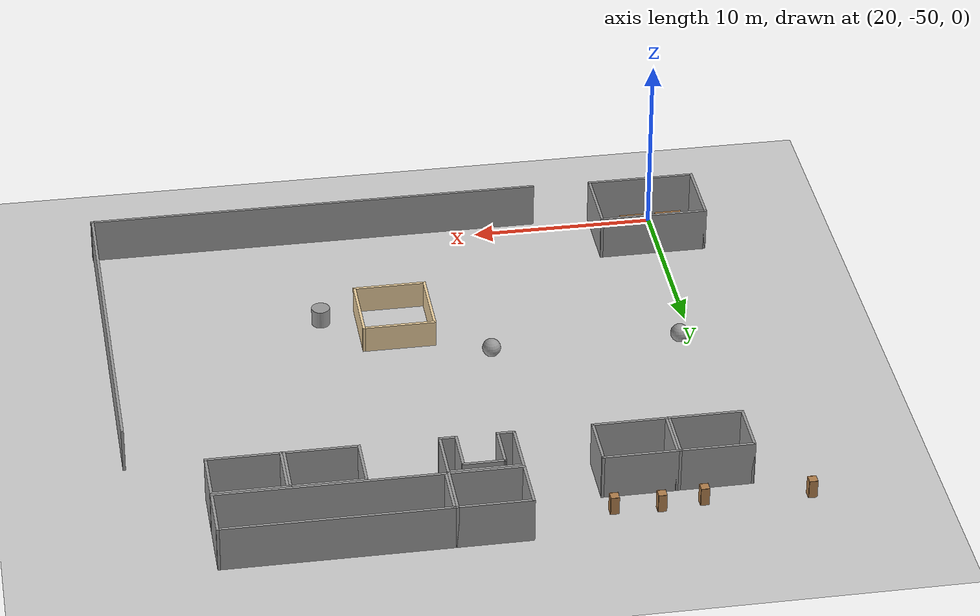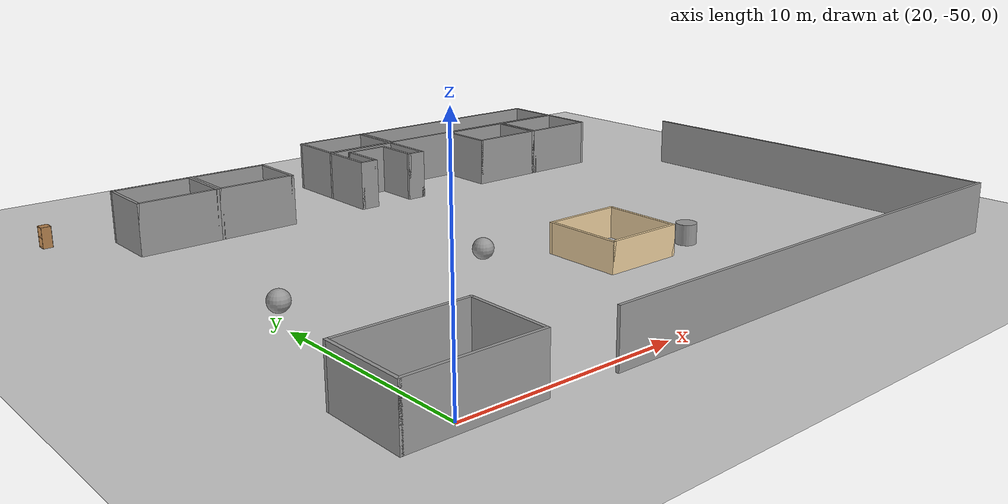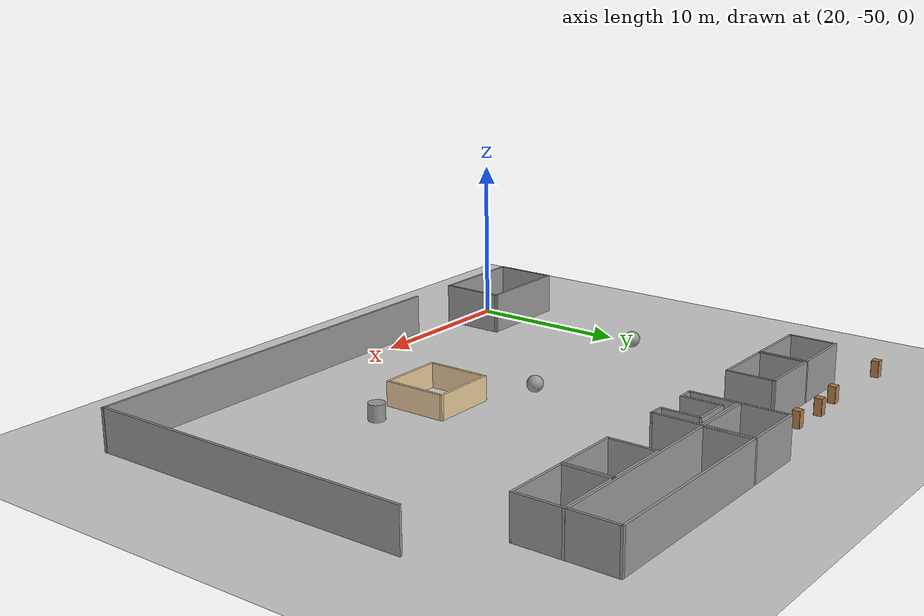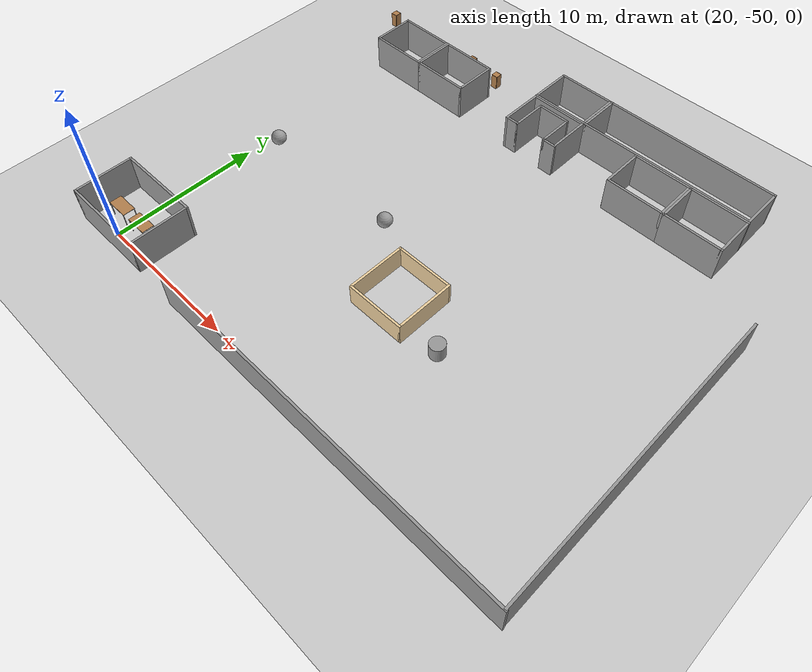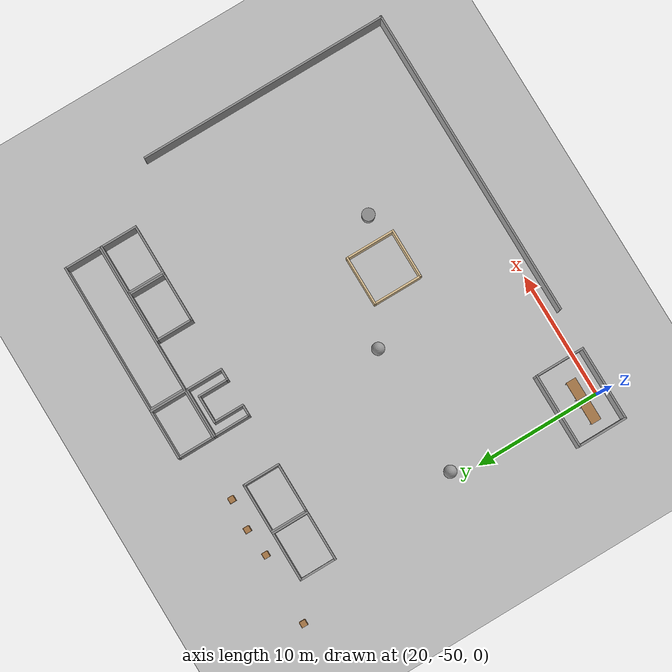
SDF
<sdf version="1.6">
 <world name="default">
  <model name="ground_plane">
   <static>1</static>
   <link name="link">
    <collision name="collision">
     <geometry><plane><normal>0 0 1</normal><size>105 105</size></plane></geometry>
     <surface>
      <contact><collide_bitmask>65535</collide_bitmask></contact>
      <friction><ode><mu>100</mu><mu2>50</mu2></ode></friction>
     </surface>
    </collision>
    <visual name="visual">
     <cast_shadows>0</cast_shadows>
     <geometry><plane><normal>0 0 1</normal><size>105 105</size></plane></geometry>
     <material>
      <script><uri>file://media/materials/scripts/gazebo.material</uri><name>Gazebo/Grey</name></script>
     </material>
    </visual>
   </link>
  </model>
  <model name="base3x4_25">
   <pose>33.5003 -23.2296 0 0 -0 0</pose>
   <link name="Wall_18">
    <collision name="Wall_18_Collision">
     <geometry><box><size>3 0.15 2.5</size></box></geometry>
     <pose>0 0 1.25 0 -0 0</pose>
    </collision>
    <visual name="Wall_18_Visual">
     <pose>0 0 1.25 0 -0 0</pose>
     <geometry><box><size>3 0.15 2.5</size></box></geometry>
     <material>
      <script><uri>file://media/materials/scripts/gazebo.material</uri><name>Gazebo/Grey</name></script>
      <ambient>1 1 1 1</ambient>
     </material>
     <meta><layer>0</layer></meta>
    </visual>
    <pose>-1.925 -0 0 0 -0 -1.5708</pose>
   </link>
   <link name="Wall_19">
    <collision name="Wall_19_Collision">
     <geometry><box><size>4 0.15 2.5</size></box></geometry>
     <pose>0 0 1.25 0 -0 0</pose>
    </collision>
    <visual name="Wall_19_Visual">
     <pose>0 0 1.25 0 -0 0</pose>
     <geometry><box><size>4 0.15 2.5</size></box></geometry>
     <material>
      <script><uri>file://media/materials/scripts/gazebo.material</uri><name>Gazebo/Grey</name></script>
      <ambient>1 1 1 1</ambient>
     </material>
     <meta><layer>0</layer></meta>
    </visual>
    <pose>-0 -1.425 0 0 -0 0</pose>
   </link>
   <link name="Wall_20">
    <collision name="Wall_20_Collision">
     <geometry><box><size>3 0.15 2.5</size></box></geometry>
     <pose>0 0 1.25 0 -0 0</pose>
    </collision>
    <visual name="Wall_20_Visual">
     <pose>0 0 1.25 0 -0 0</pose>
     <geometry><box><size>3 0.15 2.5</size></box></geometry>
     <material>
      <script><uri>file://media/materials/scripts/gazebo.material</uri><name>Gazebo/Grey</name></script>
      <ambient>1 1 1 1</ambient>
     </material>
     <meta><layer>0</layer></meta>
    </visual>
    <pose>1.925 -0 0 0 -0 1.5708</pose>
   </link>
   <link name="Wall_21">
    <collision name="Wall_21_Collision">
     <geometry><box><size>4 0.15 2.5</size></box></geometry>
     <pose>0 0 1.25 0 -0 0</pose>
    </collision>
    <visual name="Wall_21_Visual">
     <pose>0 0 1.25 0 -0 0</pose>
     <geometry><box><size>4 0.15 2.5</size></box></geometry>
     <material>
      <script><uri>file://media/materials/scripts/gazebo.material</uri><name>Gazebo/Grey</name></script>
      <ambient>1 1 1 1</ambient>
     </material>
     <meta><layer>0</layer></meta>
    </visual>
    <pose>-0 1.425 0 0 -0 3.14159</pose>
   </link>
   <static>1</static>
  </model>
  <model name="base3x12">
   <pose>41.5026 -23.2294 0 0 -0 0</pose>
   <link name="Wall_0">
    <collision name="Wall_0_Collision">
     <geometry><box><size>3 0.15 2.5</size></box></geometry>
     <pose>0 0 1.25 0 -0 0</pose>
    </collision>
    <visual name="Wall_0_Visual">
     <pose>0 0 1.25 0 -0 0</pose>
     <geometry><box><size>3 0.15 2.5</size></box></geometry>
     <material>
      <script><uri>file://media/materials/scripts/gazebo.material</uri><name>Gazebo/Grey</name></script>
      <ambient>1 1 1 1</ambient>
     </material>
     <meta><layer>0</layer></meta>
    </visual>
    <pose>-5.925 0 0 0 -0 -1.5708</pose>
   </link>
   <link name="Wall_1">
    <collision name="Wall_1_Collision">
     <geometry><box><size>12 0.15 2.5</size></box></geometry>
     <pose>0 0 1.25 0 -0 0</pose>
    </collision>
    <visual name="Wall_1_Visual">
     <pose>0 0 1.25 0 -0 0</pose>
     <geometry><box><size>12 0.15 2.5</size></box></geometry>
     <material>
      <script><uri>file://media/materials/scripts/gazebo.material</uri><name>Gazebo/Grey</name></script>
      <ambient>1 1 1 1</ambient>
     </material>
     <meta><layer>0</layer></meta>
    </visual>
    <pose>0 -1.425 0 0 -0 0</pose>
   </link>
   <link name="Wall_2">
    <collision name="Wall_2_Collision">
     <geometry><box><size>3 0.15 2.5</size></box></geometry>
     <pose>0 0 1.25 0 -0 0</pose>
    </collision>
    <visual name="Wall_2_Visual">
     <pose>0 0 1.25 0 -0 0</pose>
     <geometry><box><size>3 0.15 2.5</size></box></geometry>
     <material>
      <script><uri>file://media/materials/scripts/gazebo.material</uri><name>Gazebo/Grey</name></script>
      <ambient>1 1 1 1</ambient>
     </material>
     <meta><layer>0</layer></meta>
    </visual>
    <pose>5.925 0 0 0 -0 1.5708</pose>
   </link>
   <link name="Wall_3">
    <collision name="Wall_3_Collision">
     <geometry><box><size>12 0.15 2.5</size></box></geometry>
     <pose>0 0 1.25 0 -0 0</pose>
    </collision>
    <visual name="Wall_3_Visual">
     <pose>0 0 1.25 0 -0 0</pose>
     <geometry><box><size>12 0.15 2.5</size></box></geometry>
     <material>
      <script><uri>file://media/materials/scripts/gazebo.material</uri><name>Gazebo/Grey</name></script>
      <ambient>1 1 1 1</ambient>
     </material>
     <meta><layer>0</layer></meta>
    </visual>
    <pose>0 1.425 0 0 -0 3.14159</pose>
   </link>
   <static>1</static>
  </model>
  <model name="base4x6_0">
   <pose>20.4097 -48.6671 0 0 -0 0</pose>
   <link name="Wall_23">
    <collision name="Wall_23_Collision">
     <geometry><box><size>4 0.15 2.5</size></box></geometry>
     <pose>0 0 1.25 0 -0 0</pose>
    </collision>
    <visual name="Wall_23_Visual">
     <pose>0 0 1.25 0 -0 0</pose>
     <geometry><box><size>4 0.15 2.5</size></box></geometry>
     <material>
      <script><uri>file://media/materials/scripts/gazebo.material</uri><name>Gazebo/Grey</name></script>
      <ambient>1 1 1 1</ambient>
     </material>
     <meta><layer>0</layer></meta>
    </visual>
    <pose>-2.925 0 0 0 -0 -1.5708</pose>
   </link>
   <link name="Wall_24">
    <collision name="Wall_24_Collision">
     <geometry><box><size>6 0.15 2.5</size></box></geometry>
     <pose>0 0 1.25 0 -0 0</pose>
    </collision>
    <visual name="Wall_24_Visual">
     <pose>0 0 1.25 0 -0 0</pose>
     <geometry><box><size>6 0.15 2.5</size></box></geometry>
     <material>
      <script><uri>file://media/materials/scripts/gazebo.material</uri><name>Gazebo/Grey</name></script>
      <ambient>1 1 1 1</ambient>
     </material>
     <meta><layer>0</layer></meta>
    </visual>
    <pose>-0 -1.925 0 0 -0 0</pose>
   </link>
   <link name="Wall_25">
    <collision name="Wall_25_Collision">
     <geometry><box><size>4 0.15 2.5</size></box></geometry>
     <pose>0 0 1.25 0 -0 0</pose>
    </collision>
    <visual name="Wall_25_Visual">
     <pose>0 0 1.25 0 -0 0</pose>
     <geometry><box><size>4 0.15 2.5</size></box></geometry>
     <material>
      <script><uri>file://media/materials/scripts/gazebo.material</uri><name>Gazebo/Grey</name></script>
      <ambient>1 1 1 1</ambient>
     </material>
     <meta><layer>0</layer></meta>
    </visual>
    <pose>2.925 0 0 0 -0 1.5708</pose>
   </link>
   <link name="Wall_26">
    <collision name="Wall_26_Collision">
     <geometry><box><size>6 0.15 2.5</size></box></geometry>
     <pose>0 0 1.25 0 -0 0</pose>
    </collision>
    <visual name="Wall_26_Visual">
     <pose>0 0 1.25 0 -0 0</pose>
     <geometry><box><size>6 0.15 2.5</size></box></geometry>
     <material>
      <script><uri>file://media/materials/scripts/gazebo.material</uri><name>Gazebo/Grey</name></script>
      <ambient>1 1 1 1</ambient>
     </material>
     <meta><layer>0</layer></meta>
    </visual>
    <pose>-0 1.925 0 0 -0 3.14159</pose>
   </link>
   <static>1</static>
  </model>
  <model name="wall_v20m_8">
   <pose>51.4045 -40.7218 0 0 -0 0</pose>
   <link name="Wall_35">
    <collision name="Wall_35_Collision">
     <geometry><box><size>20 0.15 2.5</size></box></geometry>
     <pose>0 0 1.25 0 -0 0</pose>
    </collision>
    <visual name="Wall_35_Visual">
     <pose>0 0 1.25 0 -0 0</pose>
     <geometry><box><size>20 0.15 2.5</size></box></geometry>
     <material>
      <script><uri>file://media/materials/scripts/gazebo.material</uri><name>Gazebo/Grey</name></script>
      <ambient>1 1 1 1</ambient>
     </material>
     <meta><layer>0</layer></meta>
    </visual>
    <pose>0 -0 0 0 -0 -1.5708</pose>
   </link>
   <static>1</static>
  </model>
  <model name="wall_25m_9">
   <pose>39.0197 -50.7168 0 0 -0 0</pose>
   <link name="Wall_28">
    <collision name="Wall_28_Collision">
     <geometry><box><size>25 0.15 2.5</size></box></geometry>
     <pose>0 0 1.25 0 -0 0</pose>
    </collision>
    <visual name="Wall_28_Visual">
     <pose>0 0 1.25 0 -0 0</pose>
     <geometry><box><size>25 0.15 2.5</size></box></geometry>
     <material>
      <script><uri>file://media/materials/scripts/gazebo.material</uri><name>Gazebo/Grey</name></script>
      <ambient>1 1 1 1</ambient>
     </material>
     <meta><layer>0</layer></meta>
    </visual>
   </link>
   <static>1</static>
  </model>
  <model name="table_12">
   <static>1</static>
   <link name="link">
    <collision name="surface">
     <pose>0 0 1 0 -0 0</pose>
     <geometry><box><size>1.5 0.8 0.03</size></box></geometry>
     <surface><friction><ode><mu>0.6</mu><mu2>0.6</mu2></ode></friction></surface>
    </collision>
    <visual name="visual1">
     <pose>0 0 1 0 -0 0</pose>
     <geometry><box><size>1.5 0.8 0.03</size></box></geometry>
     <material>
      <script><uri>file://media/materials/scripts/gazebo.material</uri><name>Gazebo/Wood</name></script>
     </material>
    </visual>
    <collision name="front_left_leg">
     <pose>0.68 0.38 0.5 0 -0 0</pose>
     <geometry><cylinder><radius>0.02</radius><length>1</length></cylinder></geometry>
    </collision>
    <visual name="front_left_leg">
     <pose>0.68 0.38 0.5 0 -0 0</pose>
     <geometry><cylinder><radius>0.02</radius><length>1</length></cylinder></geometry>
     <material>
      <script><uri>file://media/materials/scripts/gazebo.material</uri><name>Gazebo/Grey</name></script>
     </material>
    </visual>
    <collision name="front_right_leg">
     <pose>0.68 -0.38 0.5 0 -0 0</pose>
     <geometry><cylinder><radius>0.02</radius><length>1</length></cylinder></geometry>
    </collision>
    <visual name="front_right_leg">
     <pose>0.68 -0.38 0.5 0 -0 0</pose>
     <geometry><cylinder><radius>0.02</radius><length>1</length></cylinder></geometry>
     <material>
      <script><uri>file://media/materials/scripts/gazebo.material</uri><name>Gazebo/Grey</name></script>
     </material>
    </visual>
    <collision name="back_right_leg">
     <pose>-0.68 -0.38 0.5 0 -0 0</pose>
     <geometry><cylinder><radius>0.02</radius><length>1</length></cylinder></geometry>
    </collision>
    <visual name="back_right_leg">
     <pose>-0.68 -0.38 0.5 0 -0 0</pose>
     <geometry><cylinder><radius>0.02</radius><length>1</length></cylinder></geometry>
     <material>
      <script><uri>file://media/materials/scripts/gazebo.material</uri><name>Gazebo/Grey</name></script>
     </material>
    </visual>
    <collision name="back_left_leg">
     <pose>-0.68 0.38 0.5 0 -0 0</pose>
     <geometry><cylinder><radius>0.02</radius><length>1</length></cylinder></geometry>
    </collision>
    <visual name="back_left_leg">
     <pose>-0.68 0.38 0.5 0 -0 0</pose>
     <geometry><cylinder><radius>0.02</radius><length>1</length></cylinder></geometry>
     <material>
      <script><uri>file://media/materials/scripts/gazebo.material</uri><name>Gazebo/Grey</name></script>
     </material>
    </visual>
   </link>
   <pose>19.0783 -48.8312 0 0 -0 0</pose>
  </model>
  <model name="table_13">
   <static>1</static>
   <link name="link">
    <collision name="surface">
     <pose>0 0 1 0 -0 0</pose>
     <geometry><box><size>1.5 0.8 0.03</size></box></geometry>
     <surface><friction><ode><mu>0.6</mu><mu2>0.6</mu2></ode></friction></surface>
    </collision>
    <visual name="visual1">
     <pose>0 0 1 0 -0 0</pose>
     <geometry><box><size>1.5 0.8 0.03</size></box></geometry>
     <material>
      <script><uri>file://media/materials/scripts/gazebo.material</uri><name>Gazebo/Wood</name></script>
     </material>
    </visual>
    <collision name="front_left_leg">
     <pose>0.68 0.38 0.5 0 -0 0</pose>
     <geometry><cylinder><radius>0.02</radius><length>1</length></cylinder></geometry>
    </collision>
    <visual name="front_left_leg">
     <pose>0.68 0.38 0.5 0 -0 0</pose>
     <geometry><cylinder><radius>0.02</radius><length>1</length></cylinder></geometry>
     <material>
      <script><uri>file://media/materials/scripts/gazebo.material</uri><name>Gazebo/Grey</name></script>
     </material>
    </visual>
    <collision name="front_right_leg">
     <pose>0.68 -0.38 0.5 0 -0 0</pose>
     <geometry><cylinder><radius>0.02</radius><length>1</length></cylinder></geometry>
    </collision>
    <visual name="front_right_leg">
     <pose>0.68 -0.38 0.5 0 -0 0</pose>
     <geometry><cylinder><radius>0.02</radius><length>1</length></cylinder></geometry>
     <material>
      <script><uri>file://media/materials/scripts/gazebo.material</uri><name>Gazebo/Grey</name></script>
     </material>
    </visual>
    <collision name="back_right_leg">
     <pose>-0.68 -0.38 0.5 0 -0 0</pose>
     <geometry><cylinder><radius>0.02</radius><length>1</length></cylinder></geometry>
    </collision>
    <visual name="back_right_leg">
     <pose>-0.68 -0.38 0.5 0 -0 0</pose>
     <geometry><cylinder><radius>0.02</radius><length>1</length></cylinder></geometry>
     <material>
      <script><uri>file://media/materials/scripts/gazebo.material</uri><name>Gazebo/Grey</name></script>
     </material>
    </visual>
    <collision name="back_left_leg">
     <pose>-0.68 0.38 0.5 0 -0 0</pose>
     <geometry><cylinder><radius>0.02</radius><length>1</length></cylinder></geometry>
    </collision>
    <visual name="back_left_leg">
     <pose>-0.68 0.38 0.5 0 -0 0</pose>
     <geometry><cylinder><radius>0.02</radius><length>1</length></cylinder></geometry>
     <material>
      <script><uri>file://media/materials/scripts/gazebo.material</uri><name>Gazebo/Grey</name></script>
     </material>
    </visual>
   </link>
   <pose>21.0761 -48.8079 0 0 -0 0</pose>
  </model>
  <model name="cabinet_0">
   <static>1</static>
   <link name="cabinet_bottom_plate">
    <inertial>
     <pose>0 0 -1 0 -0 0</pose>
     <inertia><ixx>2.05</ixx><ixy>0</ixy><ixz>0</ixz><iyy>2.05</iyy><iyz>0</iyz><izz>2.05</izz></inertia>
     <mass>25</mass>
    </inertial>
    <collision name="cabinet_bottom_plate_geom">
     <pose>0 0 0.01 0 -0 0</pose>
     <geometry><box><size>0.45 0.45 0.02</size></box></geometry>
    </collision>
    <visual name="cabinet_bottom_plate_geom_visual">
     <pose>0 0 0.01 0 -0 0</pose>
     <geometry><box><size>0.45 0.45 0.02</size></box></geometry>
     <material>
      <script><uri>file://media/materials/scripts/gazebo.material</uri><name>Gazebo/Wood</name></script>
     </material>
    </visual>
    <collision name="cabinet_bottom_plate_geom_cabinet_back_plate">
     <pose>0.235 0 0.51 0 -0 0</pose>
     <geometry><box><size>0.02 0.45 1.02</size></box></geometry>
    </collision>
    <visual name="cabinet_bottom_plate_geom_cabinet_back_plate_visual">
     <pose>0.235 0 0.51 0 -0 0</pose>
     <geometry><box><size>0.02 0.45 1.02</size></box></geometry>
     <material>
      <script><uri>file://media/materials/scripts/gazebo.material</uri><name>Gazebo/Wood</name></script>
     </material>
    </visual>
    <collision name="cabinet_bottom_plate_geom_cabinet_left_plate">
     <pose>0 0.235 0.51 0 -0 0</pose>
     <geometry><box><size>0.45 0.02 1.02</size></box></geometry>
    </collision>
    <visual name="cabinet_bottom_plate_geom_cabinet_left_plate_visual">
     <pose>0 0.235 0.51 0 -0 0</pose>
     <geometry><box><size>0.45 0.02 1.02</size></box></geometry>
     <material>
      <script><uri>file://media/materials/scripts/gazebo.material</uri><name>Gazebo/Wood</name></script>
     </material>
    </visual>
    <collision name="cabinet_bottom_plate_geom_cabinet_middle_plate">
     <pose>0 0 0.51 0 -0 0</pose>
     <geometry><box><size>0.45 0.45 0.02</size></box></geometry>
    </collision>
    <visual name="cabinet_bottom_plate_geom_cabinet_middle_plate_visual">
     <pose>0 0 0.51 0 -0 0</pose>
     <geometry><box><size>0.45 0.45 0.02</size></box></geometry>
     <material>
      <script><uri>file://media/materials/scripts/gazebo.material</uri><name>Gazebo/Wood</name></script>
     </material>
    </visual>
    <collision name="cabinet_bottom_plate_geom_cabinet_right_plate">
     <pose>0 -0.235 0.51 0 -0 0</pose>
     <geometry><box><size>0.45 0.02 1.02</size></box></geometry>
    </collision>
    <visual name="cabinet_bottom_plate_geom_cabinet_right_plate_visual">
     <pose>0 -0.235 0.51 0 -0 0</pose>
     <geometry><box><size>0.45 0.02 1.02</size></box></geometry>
     <material>
      <script><uri>file://media/materials/scripts/gazebo.material</uri><name>Gazebo/Wood</name></script>
     </material>
    </visual>
    <collision name="cabinet_bottom_plate_geom_cabinet_top_plate">
     <pose>0 0 1.01 0 -0 0</pose>
     <geometry><box><size>0.45 0.45 0.02</size></box></geometry>
    </collision>
    <visual name="cabinet_bottom_plate_geom_cabinet_top_plate_visual">
     <pose>0 0 1.01 0 -0 0</pose>
     <geometry><box><size>0.45 0.45 0.02</size></box></geometry>
     <material>
      <script><uri>file://media/materials/scripts/gazebo.material</uri><name>Gazebo/Wood</name></script>
     </material>
    </visual>
   </link>
   <pose>16.8557 -23.3254 0 0 -0 0</pose>
  </model>
  <model name="cabinet_2">
   <static>1</static>
   <link name="cabinet_bottom_plate">
    <inertial>
     <pose>0 0 -1 0 -0 0</pose>
     <inertia><ixx>2.05</ixx><ixy>0</ixy><ixz>0</ixz><iyy>2.05</iyy><iyz>0</iyz><izz>2.05</izz></inertia>
     <mass>25</mass>
    </inertial>
    <collision name="cabinet_bottom_plate_geom">
     <pose>0 0 0.01 0 -0 0</pose>
     <geometry><box><size>0.45 0.45 0.02</size></box></geometry>
    </collision>
    <visual name="cabinet_bottom_plate_geom_visual">
     <pose>0 0 0.01 0 -0 0</pose>
     <geometry><box><size>0.45 0.45 0.02</size></box></geometry>
     <material>
      <script><uri>file://media/materials/scripts/gazebo.material</uri><name>Gazebo/Wood</name></script>
     </material>
    </visual>
    <collision name="cabinet_bottom_plate_geom_cabinet_back_plate">
     <pose>0.235 0 0.51 0 -0 0</pose>
     <geometry><box><size>0.02 0.45 1.02</size></box></geometry>
    </collision>
    <visual name="cabinet_bottom_plate_geom_cabinet_back_plate_visual">
     <pose>0.235 0 0.51 0 -0 0</pose>
     <geometry><box><size>0.02 0.45 1.02</size></box></geometry>
     <material>
      <script><uri>file://media/materials/scripts/gazebo.material</uri><name>Gazebo/Wood</name></script>
     </material>
    </visual>
    <collision name="cabinet_bottom_plate_geom_cabinet_left_plate">
     <pose>0 0.235 0.51 0 -0 0</pose>
     <geometry><box><size>0.45 0.02 1.02</size></box></geometry>
    </collision>
    <visual name="cabinet_bottom_plate_geom_cabinet_left_plate_visual">
     <pose>0 0.235 0.51 0 -0 0</pose>
     <geometry><box><size>0.45 0.02 1.02</size></box></geometry>
     <material>
      <script><uri>file://media/materials/scripts/gazebo.material</uri><name>Gazebo/Wood</name></script>
     </material>
    </visual>
    <collision name="cabinet_bottom_plate_geom_cabinet_middle_plate">
     <pose>0 0 0.51 0 -0 0</pose>
     <geometry><box><size>0.45 0.45 0.02</size></box></geometry>
    </collision>
    <visual name="cabinet_bottom_plate_geom_cabinet_middle_plate_visual">
     <pose>0 0 0.51 0 -0 0</pose>
     <geometry><box><size>0.45 0.45 0.02</size></box></geometry>
     <material>
      <script><uri>file://media/materials/scripts/gazebo.material</uri><name>Gazebo/Wood</name></script>
     </material>
    </visual>
    <collision name="cabinet_bottom_plate_geom_cabinet_right_plate">
     <pose>0 -0.235 0.51 0 -0 0</pose>
     <geometry><box><size>0.45 0.02 1.02</size></box></geometry>
    </collision>
    <visual name="cabinet_bottom_plate_geom_cabinet_right_plate_visual">
     <pose>0 -0.235 0.51 0 -0 0</pose>
     <geometry><box><size>0.45 0.02 1.02</size></box></geometry>
     <material>
      <script><uri>file://media/materials/scripts/gazebo.material</uri><name>Gazebo/Wood</name></script>
     </material>
    </visual>
    <collision name="cabinet_bottom_plate_geom_cabinet_top_plate">
     <pose>0 0 1.01 0 -0 0</pose>
     <geometry><box><size>0.45 0.45 0.02</size></box></geometry>
    </collision>
    <visual name="cabinet_bottom_plate_geom_cabinet_top_plate_visual">
     <pose>0 0 1.01 0 -0 0</pose>
     <geometry><box><size>0.45 0.45 0.02</size></box></geometry>
     <material>
      <script><uri>file://media/materials/scripts/gazebo.material</uri><name>Gazebo/Wood</name></script>
     </material>
    </visual>
   </link>
   <pose>22.437 -23.5316 0 0 -0 0</pose>
  </model>
  <model name="cabinet_3">
   <static>1</static>
   <link name="cabinet_bottom_plate">
    <inertial>
     <pose>0 0 -1 0 -0 0</pose>
     <inertia><ixx>2.05</ixx><ixy>0</ixy><ixz>0</ixz><iyy>2.05</iyy><iyz>0</iyz><izz>2.05</izz></inertia>
     <mass>25</mass>
    </inertial>
    <collision name="cabinet_bottom_plate_geom">
     <pose>0 0 0.01 0 -0 0</pose>
     <geometry><box><size>0.45 0.45 0.02</size></box></geometry>
    </collision>
    <visual name="cabinet_bottom_plate_geom_visual">
     <pose>0 0 0.01 0 -0 0</pose>
     <geometry><box><size>0.45 0.45 0.02</size></box></geometry>
     <material>
      <script><uri>file://media/materials/scripts/gazebo.material</uri><name>Gazebo/Wood</name></script>
     </material>
    </visual>
    <collision name="cabinet_bottom_plate_geom_cabinet_back_plate">
     <pose>0.235 0 0.51 0 -0 0</pose>
     <geometry><box><size>0.02 0.45 1.02</size></box></geometry>
    </collision>
    <visual name="cabinet_bottom_plate_geom_cabinet_back_plate_visual">
     <pose>0.235 0 0.51 0 -0 0</pose>
     <geometry><box><size>0.02 0.45 1.02</size></box></geometry>
     <material>
      <script><uri>file://media/materials/scripts/gazebo.material</uri><name>Gazebo/Wood</name></script>
     </material>
    </visual>
    <collision name="cabinet_bottom_plate_geom_cabinet_left_plate">
     <pose>0 0.235 0.51 0 -0 0</pose>
     <geometry><box><size>0.45 0.02 1.02</size></box></geometry>
    </collision>
    <visual name="cabinet_bottom_plate_geom_cabinet_left_plate_visual">
     <pose>0 0.235 0.51 0 -0 0</pose>
     <geometry><box><size>0.45 0.02 1.02</size></box></geometry>
     <material>
      <script><uri>file://media/materials/scripts/gazebo.material</uri><name>Gazebo/Wood</name></script>
     </material>
    </visual>
    <collision name="cabinet_bottom_plate_geom_cabinet_middle_plate">
     <pose>0 0 0.51 0 -0 0</pose>
     <geometry><box><size>0.45 0.45 0.02</size></box></geometry>
    </collision>
    <visual name="cabinet_bottom_plate_geom_cabinet_middle_plate_visual">
     <pose>0 0 0.51 0 -0 0</pose>
     <geometry><box><size>0.45 0.45 0.02</size></box></geometry>
     <material>
      <script><uri>file://media/materials/scripts/gazebo.material</uri><name>Gazebo/Wood</name></script>
     </material>
    </visual>
    <collision name="cabinet_bottom_plate_geom_cabinet_right_plate">
     <pose>0 -0.235 0.51 0 -0 0</pose>
     <geometry><box><size>0.45 0.02 1.02</size></box></geometry>
    </collision>
    <visual name="cabinet_bottom_plate_geom_cabinet_right_plate_visual">
     <pose>0 -0.235 0.51 0 -0 0</pose>
     <geometry><box><size>0.45 0.02 1.02</size></box></geometry>
     <material>
      <script><uri>file://media/materials/scripts/gazebo.material</uri><name>Gazebo/Wood</name></script>
     </material>
    </visual>
    <collision name="cabinet_bottom_plate_geom_cabinet_top_plate">
     <pose>0 0 1.01 0 -0 0</pose>
     <geometry><box><size>0.45 0.45 0.02</size></box></geometry>
    </collision>
    <visual name="cabinet_bottom_plate_geom_cabinet_top_plate_visual">
     <pose>0 0 1.01 0 -0 0</pose>
     <geometry><box><size>0.45 0.45 0.02</size></box></geometry>
     <material>
      <script><uri>file://media/materials/scripts/gazebo.material</uri><name>Gazebo/Wood</name></script>
     </material>
    </visual>
   </link>
   <pose>24.6818 -23.3224 0 0 -0 0</pose>
  </model>
  <model name="cabinet_4">
   <static>1</static>
   <link name="cabinet_bottom_plate">
    <inertial>
     <pose>0 0 -1 0 -0 0</pose>
     <inertia><ixx>2.05</ixx><ixy>0</ixy><ixz>0</ixz><iyy>2.05</iyy><iyz>0</iyz><izz>2.05</izz></inertia>
     <mass>25</mass>
    </inertial>
    <collision name="cabinet_bottom_plate_geom">
     <pose>0 0 0.01 0 -0 0</pose>
     <geometry><box><size>0.45 0.45 0.02</size></box></geometry>
    </collision>
    <visual name="cabinet_bottom_plate_geom_visual">
     <pose>0 0 0.01 0 -0 0</pose>
     <geometry><box><size>0.45 0.45 0.02</size></box></geometry>
     <material>
      <script><uri>file://media/materials/scripts/gazebo.material</uri><name>Gazebo/Wood</name></script>
     </material>
    </visual>
    <collision name="cabinet_bottom_plate_geom_cabinet_back_plate">
     <pose>0.235 0 0.51 0 -0 0</pose>
     <geometry><box><size>0.02 0.45 1.02</size></box></geometry>
    </collision>
    <visual name="cabinet_bottom_plate_geom_cabinet_back_plate_visual">
     <pose>0.235 0 0.51 0 -0 0</pose>
     <geometry><box><size>0.02 0.45 1.02</size></box></geometry>
     <material>
      <script><uri>file://media/materials/scripts/gazebo.material</uri><name>Gazebo/Wood</name></script>
     </material>
    </visual>
    <collision name="cabinet_bottom_plate_geom_cabinet_left_plate">
     <pose>0 0.235 0.51 0 -0 0</pose>
     <geometry><box><size>0.45 0.02 1.02</size></box></geometry>
    </collision>
    <visual name="cabinet_bottom_plate_geom_cabinet_left_plate_visual">
     <pose>0 0.235 0.51 0 -0 0</pose>
     <geometry><box><size>0.45 0.02 1.02</size></box></geometry>
     <material>
      <script><uri>file://media/materials/scripts/gazebo.material</uri><name>Gazebo/Wood</name></script>
     </material>
    </visual>
    <collision name="cabinet_bottom_plate_geom_cabinet_middle_plate">
     <pose>0 0 0.51 0 -0 0</pose>
     <geometry><box><size>0.45 0.45 0.02</size></box></geometry>
    </collision>
    <visual name="cabinet_bottom_plate_geom_cabinet_middle_plate_visual">
     <pose>0 0 0.51 0 -0 0</pose>
     <geometry><box><size>0.45 0.45 0.02</size></box></geometry>
     <material>
      <script><uri>file://media/materials/scripts/gazebo.material</uri><name>Gazebo/Wood</name></script>
     </material>
    </visual>
    <collision name="cabinet_bottom_plate_geom_cabinet_right_plate">
     <pose>0 -0.235 0.51 0 -0 0</pose>
     <geometry><box><size>0.45 0.02 1.02</size></box></geometry>
    </collision>
    <visual name="cabinet_bottom_plate_geom_cabinet_right_plate_visual">
     <pose>0 -0.235 0.51 0 -0 0</pose>
     <geometry><box><size>0.45 0.02 1.02</size></box></geometry>
     <material>
      <script><uri>file://media/materials/scripts/gazebo.material</uri><name>Gazebo/Wood</name></script>
     </material>
    </visual>
    <collision name="cabinet_bottom_plate_geom_cabinet_top_plate">
     <pose>0 0 1.01 0 -0 0</pose>
     <geometry><box><size>0.45 0.45 0.02</size></box></geometry>
    </collision>
    <visual name="cabinet_bottom_plate_geom_cabinet_top_plate_visual">
     <pose>0 0 1.01 0 -0 0</pose>
     <geometry><box><size>0.45 0.45 0.02</size></box></geometry>
     <material>
      <script><uri>file://media/materials/scripts/gazebo.material</uri><name>Gazebo/Wood</name></script>
     </material>
    </visual>
   </link>
   <pose>27.1129 -23.4747 0 0 -0 0</pose>
  </model>
  <model name="unit_sphere">
   <pose>20.702 -37.9798 0.5 0 -0 0</pose>
   <link name="link">
    <inertial>
     <mass>1</mass>
     <inertia><ixx>0.1</ixx><ixy>0</ixy><ixz>0</ixz><iyy>0.1</iyy><iyz>0</iyz><izz>0.1</izz></inertia>
    </inertial>
    <collision name="collision"><geometry><sphere><radius>0.5</radius></sphere></geometry></collision>
    <visual name="visual">
     <geometry><sphere><radius>0.5</radius></sphere></geometry>
     <material>
      <script><name>Gazebo/Grey</name><uri>file://media/materials/scripts/gazebo.material</uri></script>
     </material>
    </visual>
   </link>
  </model>
  <model name="unit_sphere_0">
   <pose>30.9933 -38.1291 0.5 0 -0 0</pose>
   <link name="link">
    <inertial>
     <mass>1</mass>
     <inertia><ixx>0.1</ixx><ixy>0</ixy><ixz>0</ixz><iyy>0.1</iyy><iyz>0</iyz><izz>0.1</izz></inertia>
    </inertial>
    <collision name="collision"><geometry><sphere><radius>0.5</radius></sphere></geometry></collision>
    <visual name="visual">
     <geometry><sphere><radius>0.5</radius></sphere></geometry>
     <material>
      <script><name>Gazebo/Grey</name><uri>file://media/materials/scripts/gazebo.material</uri></script>
     </material>
    </visual>
   </link>
  </model>
  <model name="unit_cylinder">
   <pose>39.6954 -42.5641 0.499981 0 -0 0</pose>
   <link name="link">
    <inertial>
     <mass>1</mass>
     <inertia><ixx>0.145833</ixx><ixy>0</ixy><ixz>0</ixz><iyy>0.145833</iyy><iyz>0</iyz><izz>0.125</izz></inertia>
    </inertial>
    <collision name="collision">
     <geometry><cylinder><radius>0.5</radius><length>1</length></cylinder></geometry>
    </collision>
    <visual name="visual">
     <geometry><cylinder><radius>0.5</radius><length>1</length></cylinder></geometry>
     <material>
      <script><name>Gazebo/Grey</name><uri>file://media/materials/scripts/gazebo.material</uri></script>
     </material>
    </visual>
   </link>
  </model>
  <model name="box4x4x1.5_3">
   <pose>35.7872 -41.5085 0 0 -0 0</pose>
   <link name="Wall_5">
    <collision name="Wall_5_Collision">
     <geometry><box><size>4 0.15 1.5</size></box></geometry>
     <pose>0 0 0.75 0 -0 0</pose>
    </collision>
    <visual name="Wall_5_Visual">
     <pose>0 0 0.75 0 -0 0</pose>
     <geometry><box><size>4 0.15 1.5</size></box></geometry>
     <material>
      <script><uri>file://media/materials/scripts/gazebo.material</uri><name>Gazebo/Grey</name></script>
      <ambient>0.921569 0.807843 0.615686 1</ambient>
     </material>
     <meta><layer>0</layer></meta>
    </visual>
    <pose>-1.925 -0 0 0 -0 -1.5708</pose>
   </link>
   <link name="Wall_6">
    <collision name="Wall_6_Collision">
     <geometry><box><size>4 0.15 1.5</size></box></geometry>
     <pose>0 0 0.75 0 -0 0</pose>
    </collision>
    <visual name="Wall_6_Visual">
     <pose>0 0 0.75 0 -0 0</pose>
     <geometry><box><size>4 0.15 1.5</size></box></geometry>
     <material>
      <script><uri>file://media/materials/scripts/gazebo.material</uri><name>Gazebo/Grey</name></script>
      <ambient>0.921569 0.807843 0.615686 1</ambient>
     </material>
     <meta><layer>0</layer></meta>
    </visual>
    <pose>0 -1.925 0 0 -0 0</pose>
   </link>
   <link name="Wall_7">
    <collision name="Wall_7_Collision">
     <geometry><box><size>4 0.15 1.5</size></box></geometry>
     <pose>0 0 0.75 0 -0 0</pose>
    </collision>
    <visual name="Wall_7_Visual">
     <pose>0 0 0.75 0 -0 0</pose>
     <geometry><box><size>4 0.15 1.5</size></box></geometry>
     <material>
      <script><uri>file://media/materials/scripts/gazebo.material</uri><name>Gazebo/Grey</name></script>
      <ambient>0.921569 0.807843 0.615686 1</ambient>
     </material>
     <meta><layer>0</layer></meta>
    </visual>
    <pose>1.925 -0 0 0 -0 1.5708</pose>
   </link>
   <link name="Wall_8">
    <collision name="Wall_8_Collision">
     <geometry><box><size>4 0.15 1.5</size></box></geometry>
     <pose>0 0 0.75 0 -0 0</pose>
    </collision>
    <visual name="Wall_8_Visual">
     <pose>0 0 0.75 0 -0 0</pose>
     <geometry><box><size>4 0.15 1.5</size></box></geometry>
     <material>
      <script><uri>file://media/materials/scripts/gazebo.material</uri><name>Gazebo/Grey</name></script>
      <ambient>0.921569 0.807843 0.615686 1</ambient>
     </material>
     <meta><layer>0</layer></meta>
    </visual>
    <pose>0 1.925 0 0 -0 3.14159</pose>
   </link>
   <static>1</static>
  </model>
  <model name="base3x4_9">
   <pose>45.5083 -26.2198 0 0 -0 0</pose>
   <link name="Wall_18">
    <collision name="Wall_18_Collision">
     <geometry><box><size>3 0.15 2.5</size></box></geometry>
     <pose>0 0 1.25 0 -0 0</pose>
    </collision>
    <visual name="Wall_18_Visual">
     <pose>0 0 1.25 0 -0 0</pose>
     <geometry><box><size>3 0.15 2.5</size></box></geometry>
     <material>
      <script><uri>file://media/materials/scripts/gazebo.material</uri><name>Gazebo/Grey</name></script>
      <ambient>1 1 1 1</ambient>
     </material>
     <meta><layer>0</layer></meta>
    </visual>
    <pose>-1.925 -0 0 0 -0 -1.5708</pose>
   </link>
   <link name="Wall_19">
    <collision name="Wall_19_Collision">
     <geometry><box><size>4 0.15 2.5</size></box></geometry>
     <pose>0 0 1.25 0 -0 0</pose>
    </collision>
    <visual name="Wall_19_Visual">
     <pose>0 0 1.25 0 -0 0</pose>
     <geometry><box><size>4 0.15 2.5</size></box></geometry>
     <material>
      <script><uri>file://media/materials/scripts/gazebo.material</uri><name>Gazebo/Grey</name></script>
      <ambient>1 1 1 1</ambient>
     </material>
     <meta><layer>0</layer></meta>
    </visual>
    <pose>-0 -1.425 0 0 -0 0</pose>
   </link>
   <link name="Wall_20">
    <collision name="Wall_20_Collision">
     <geometry><box><size>3 0.15 2.5</size></box></geometry>
     <pose>0 0 1.25 0 -0 0</pose>
    </collision>
    <visual name="Wall_20_Visual">
     <pose>0 0 1.25 0 -0 0</pose>
     <geometry><box><size>3 0.15 2.5</size></box></geometry>
     <material>
      <script><uri>file://media/materials/scripts/gazebo.material</uri><name>Gazebo/Grey</name></script>
      <ambient>1 1 1 1</ambient>
     </material>
     <meta><layer>0</layer></meta>
    </visual>
    <pose>1.925 -0 0 0 -0 1.5708</pose>
   </link>
   <link name="Wall_21">
    <collision name="Wall_21_Collision">
     <geometry><box><size>4 0.15 2.5</size></box></geometry>
     <pose>0 0 1.25 0 -0 0</pose>
    </collision>
    <visual name="Wall_21_Visual">
     <pose>0 0 1.25 0 -0 0</pose>
     <geometry><box><size>4 0.15 2.5</size></box></geometry>
     <material>
      <script><uri>file://media/materials/scripts/gazebo.material</uri><name>Gazebo/Grey</name></script>
      <ambient>1 1 1 1</ambient>
     </material>
     <meta><layer>0</layer></meta>
    </visual>
    <pose>-0 1.425 0 0 -0 3.14159</pose>
   </link>
   <static>1</static>
  </model>
  <model name="base3x4_12">
   <pose>41.5115 -26.2157 0 0 -0 0</pose>
   <link name="Wall_18">
    <collision name="Wall_18_Collision">
     <geometry><box><size>3 0.15 2.5</size></box></geometry>
     <pose>0 0 1.25 0 -0 0</pose>
    </collision>
    <visual name="Wall_18_Visual">
     <pose>0 0 1.25 0 -0 0</pose>
     <geometry><box><size>3 0.15 2.5</size></box></geometry>
     <material>
      <script><uri>file://media/materials/scripts/gazebo.material</uri><name>Gazebo/Grey</name></script>
      <ambient>1 1 1 1</ambient>
     </material>
     <meta><layer>0</layer></meta>
    </visual>
    <pose>-1.925 -0 0 0 -0 -1.5708</pose>
   </link>
   <link name="Wall_19">
    <collision name="Wall_19_Collision">
     <geometry><box><size>4 0.15 2.5</size></box></geometry>
     <pose>0 0 1.25 0 -0 0</pose>
    </collision>
    <visual name="Wall_19_Visual">
     <pose>0 0 1.25 0 -0 0</pose>
     <geometry><box><size>4 0.15 2.5</size></box></geometry>
     <material>
      <script><uri>file://media/materials/scripts/gazebo.material</uri><name>Gazebo/Grey</name></script>
      <ambient>1 1 1 1</ambient>
     </material>
     <meta><layer>0</layer></meta>
    </visual>
    <pose>-0 -1.425 0 0 -0 0</pose>
   </link>
   <link name="Wall_20">
    <collision name="Wall_20_Collision">
     <geometry><box><size>3 0.15 2.5</size></box></geometry>
     <pose>0 0 1.25 0 -0 0</pose>
    </collision>
    <visual name="Wall_20_Visual">
     <pose>0 0 1.25 0 -0 0</pose>
     <geometry><box><size>3 0.15 2.5</size></box></geometry>
     <material>
      <script><uri>file://media/materials/scripts/gazebo.material</uri><name>Gazebo/Grey</name></script>
      <ambient>1 1 1 1</ambient>
     </material>
     <meta><layer>0</layer></meta>
    </visual>
    <pose>1.925 -0 0 0 -0 1.5708</pose>
   </link>
   <link name="Wall_21">
    <collision name="Wall_21_Collision">
     <geometry><box><size>4 0.15 2.5</size></box></geometry>
     <pose>0 0 1.25 0 -0 0</pose>
    </collision>
    <visual name="Wall_21_Visual">
     <pose>0 0 1.25 0 -0 0</pose>
     <geometry><box><size>4 0.15 2.5</size></box></geometry>
     <material>
      <script><uri>file://media/materials/scripts/gazebo.material</uri><name>Gazebo/Grey</name></script>
      <ambient>1 1 1 1</ambient>
     </material>
     <meta><layer>0</layer></meta>
    </visual>
    <pose>-0 1.425 0 0 -0 3.14159</pose>
   </link>
   <static>1</static>
  </model>
  <model name="base3x4_18">
   <pose>25.5531 -26.2178 0 0 -0 0</pose>
   <link name="Wall_18">
    <collision name="Wall_18_Collision">
     <geometry><box><size>3 0.15 2.5</size></box></geometry>
     <pose>0 0 1.25 0 -0 0</pose>
    </collision>
    <visual name="Wall_18_Visual">
     <pose>0 0 1.25 0 -0 0</pose>
     <geometry><box><size>3 0.15 2.5</size></box></geometry>
     <material>
      <script><uri>file://media/materials/scripts/gazebo.material</uri><name>Gazebo/Grey</name></script>
      <ambient>1 1 1 1</ambient>
     </material>
     <meta><layer>0</layer></meta>
    </visual>
    <pose>-1.925 -0 0 0 -0 -1.5708</pose>
   </link>
   <link name="Wall_19">
    <collision name="Wall_19_Collision">
     <geometry><box><size>4 0.15 2.5</size></box></geometry>
     <pose>0 0 1.25 0 -0 0</pose>
    </collision>
    <visual name="Wall_19_Visual">
     <pose>0 0 1.25 0 -0 0</pose>
     <geometry><box><size>4 0.15 2.5</size></box></geometry>
     <material>
      <script><uri>file://media/materials/scripts/gazebo.material</uri><name>Gazebo/Grey</name></script>
      <ambient>1 1 1 1</ambient>
     </material>
     <meta><layer>0</layer></meta>
    </visual>
    <pose>-0 -1.425 0 0 -0 0</pose>
   </link>
   <link name="Wall_20">
    <collision name="Wall_20_Collision">
     <geometry><box><size>3 0.15 2.5</size></box></geometry>
     <pose>0 0 1.25 0 -0 0</pose>
    </collision>
    <visual name="Wall_20_Visual">
     <pose>0 0 1.25 0 -0 0</pose>
     <geometry><box><size>3 0.15 2.5</size></box></geometry>
     <material>
      <script><uri>file://media/materials/scripts/gazebo.material</uri><name>Gazebo/Grey</name></script>
      <ambient>1 1 1 1</ambient>
     </material>
     <meta><layer>0</layer></meta>
    </visual>
    <pose>1.925 -0 0 0 -0 1.5708</pose>
   </link>
   <link name="Wall_21">
    <collision name="Wall_21_Collision">
     <geometry><box><size>4 0.15 2.5</size></box></geometry>
     <pose>0 0 1.25 0 -0 0</pose>
    </collision>
    <visual name="Wall_21_Visual">
     <pose>0 0 1.25 0 -0 0</pose>
     <geometry><box><size>4 0.15 2.5</size></box></geometry>
     <material>
      <script><uri>file://media/materials/scripts/gazebo.material</uri><name>Gazebo/Grey</name></script>
      <ambient>1 1 1 1</ambient>
     </material>
     <meta><layer>0</layer></meta>
    </visual>
    <pose>-0 1.425 0 0 -0 3.14159</pose>
   </link>
   <static>1</static>
  </model>
  <model name="base3x4_19">
   <pose>21.5621 -26.2254 0 0 -0 0</pose>
   <link name="Wall_18">
    <collision name="Wall_18_Collision">
     <geometry><box><size>3 0.15 2.5</size></box></geometry>
     <pose>0 0 1.25 0 -0 0</pose>
    </collision>
    <visual name="Wall_18_Visual">
     <pose>0 0 1.25 0 -0 0</pose>
     <geometry><box><size>3 0.15 2.5</size></box></geometry>
     <material>
      <script><uri>file://media/materials/scripts/gazebo.material</uri><name>Gazebo/Grey</name></script>
      <ambient>1 1 1 1</ambient>
     </material>
     <meta><layer>0</layer></meta>
    </visual>
    <pose>-1.925 -0 0 0 -0 -1.5708</pose>
   </link>
   <link name="Wall_19">
    <collision name="Wall_19_Collision">
     <geometry><box><size>4 0.15 2.5</size></box></geometry>
     <pose>0 0 1.25 0 -0 0</pose>
    </collision>
    <visual name="Wall_19_Visual">
     <pose>0 0 1.25 0 -0 0</pose>
     <geometry><box><size>4 0.15 2.5</size></box></geometry>
     <material>
      <script><uri>file://media/materials/scripts/gazebo.material</uri><name>Gazebo/Grey</name></script>
      <ambient>1 1 1 1</ambient>
     </material>
     <meta><layer>0</layer></meta>
    </visual>
    <pose>-0 -1.425 0 0 -0 0</pose>
   </link>
   <link name="Wall_20">
    <collision name="Wall_20_Collision">
     <geometry><box><size>3 0.15 2.5</size></box></geometry>
     <pose>0 0 1.25 0 -0 0</pose>
    </collision>
    <visual name="Wall_20_Visual">
     <pose>0 0 1.25 0 -0 0</pose>
     <geometry><box><size>3 0.15 2.5</size></box></geometry>
     <material>
      <script><uri>file://media/materials/scripts/gazebo.material</uri><name>Gazebo/Grey</name></script>
      <ambient>1 1 1 1</ambient>
     </material>
     <meta><layer>0</layer></meta>
    </visual>
    <pose>1.925 -0 0 0 -0 1.5708</pose>
   </link>
   <link name="Wall_21">
    <collision name="Wall_21_Collision">
     <geometry><box><size>4 0.15 2.5</size></box></geometry>
     <pose>0 0 1.25 0 -0 0</pose>
    </collision>
    <visual name="Wall_21_Visual">
     <pose>0 0 1.25 0 -0 0</pose>
     <geometry><box><size>4 0.15 2.5</size></box></geometry>
     <material>
      <script><uri>file://media/materials/scripts/gazebo.material</uri><name>Gazebo/Grey</name></script>
      <ambient>1 1 1 1</ambient>
     </material>
     <meta><layer>0</layer></meta>
    </visual>
    <pose>-0 1.425 0 0 -0 3.14159</pose>
   </link>
   <static>1</static>
  </model>
  <model name="box_u_v4X3X2.5_8">
   <pose>33.5067 -26.2251 0 0 -0 0</pose>
   <link name="Wall_30">
    <collision name="Wall_30_Collision">
     <geometry><box><size>3 0.15 2.5</size></box></geometry>
     <pose>0 0 1.25 0 -0 0</pose>
    </collision>
    <visual name="Wall_30_Visual">
     <pose>0 0 1.25 0 -0 0</pose>
     <geometry><box><size>3 0.15 2.5</size></box></geometry>
     <material>
      <script><uri>file://media/materials/scripts/gazebo.material</uri><name>Gazebo/Grey</name></script>
      <ambient>1 1 1 1</ambient>
     </material>
     <meta><layer>0</layer></meta>
    </visual>
    <pose>-1.925 0 0 0 -0 -1.5708</pose>
   </link>
   <link name="Wall_32">
    <collision name="Wall_32_Collision">
     <geometry><box><size>4 0.15 2.5</size></box></geometry>
     <pose>0 0 1.25 0 -0 0</pose>
    </collision>
    <visual name="Wall_32_Visual">
     <pose>0 0 1.25 0 -0 0</pose>
     <geometry><box><size>4 0.15 2.5</size></box></geometry>
     <material>
      <script><uri>file://media/materials/scripts/gazebo.material</uri><name>Gazebo/Grey</name></script>
      <ambient>1 1 1 1</ambient>
     </material>
     <meta><layer>0</layer></meta>
    </visual>
    <pose>0 1.425 0 0 -0 0</pose>
   </link>
   <link name="Wall_33">
    <collision name="Wall_33_Collision">
     <geometry><box><size>3 0.15 2.5</size></box></geometry>
     <pose>0 0 1.25 0 -0 0</pose>
    </collision>
    <visual name="Wall_33_Visual">
     <pose>0 0 1.25 0 -0 0</pose>
     <geometry><box><size>3 0.15 2.5</size></box></geometry>
     <material>
      <script><uri>file://media/materials/scripts/gazebo.material</uri><name>Gazebo/Grey</name></script>
      <ambient>1 1 1 1</ambient>
     </material>
     <meta><layer>0</layer></meta>
    </visual>
    <pose>1.925 0 0 0 -0 -1.5708</pose>
   </link>
   <link name="Wall_34">
    <collision name="Wall_34_Collision">
     <geometry><box><size>1 0.15 2.5</size></box></geometry>
     <pose>0 0 1.25 0 -0 0</pose>
    </collision>
    <visual name="Wall_34_Visual">
     <pose>0 0 1.25 0 -0 0</pose>
     <geometry><box><size>1 0.15 2.5</size></box></geometry>
     <material>
      <script><uri>file://media/materials/scripts/gazebo.material</uri><name>Gazebo/Grey</name></script>
      <ambient>1 1 1 1</ambient>
     </material>
     <meta><layer>0</layer></meta>
    </visual>
    <pose>1.5 -1.425 0 0 -0 3.14159</pose>
   </link>
   <link name="Wall_35">
    <collision name="Wall_35_Collision">
     <geometry><box><size>2.5 0.15 2.5</size></box></geometry>
     <pose>0 0 1.25 0 -0 0</pose>
    </collision>
    <visual name="Wall_35_Visual">
     <pose>0 0 1.25 0 -0 0</pose>
     <geometry><box><size>2.5 0.15 2.5</size></box></geometry>
     <material>
      <script><uri>file://media/materials/scripts/gazebo.material</uri><name>Gazebo/Grey</name></script>
      <ambient>1 1 1 1</ambient>
     </material>
     <meta><layer>0</layer></meta>
    </visual>
    <pose>1.075 -0.25 0 0 -0 1.5708</pose>
   </link>
   <link name="Wall_37">
    <collision name="Wall_37_Collision">
     <geometry><box><size>1 0.15 2.5</size></box></geometry>
     <pose>0 0 1.25 0 -0 0</pose>
    </collision>
    <visual name="Wall_37_Visual">
     <pose>0 0 1.25 0 -0 0</pose>
     <geometry><box><size>1 0.15 2.5</size></box></geometry>
     <material>
      <script><uri>file://media/materials/scripts/gazebo.material</uri><name>Gazebo/Grey</name></script>
      <ambient>1 1 1 1</ambient>
     </material>
     <meta><layer>0</layer></meta>
    </visual>
    <pose>-1.5 -1.425 0 0 -0 0</pose>
   </link>
   <link name="Wall_38">
    <collision name="Wall_38_Collision">
     <geometry><box><size>2.5 0.15 2.5</size></box></geometry>
     <pose>0 0 1.25 0 -0 0</pose>
    </collision>
    <visual name="Wall_38_Visual">
     <pose>0 0 1.25 0 -0 0</pose>
     <geometry><box><size>2.5 0.15 2.5</size></box></geometry>
     <material>
      <script><uri>file://media/materials/scripts/gazebo.material</uri><name>Gazebo/Grey</name></script>
      <ambient>1 1 1 1</ambient>
     </material>
     <meta><layer>0</layer></meta>
    </visual>
    <pose>-1.075 -0.25 0 0 -0 1.5708</pose>
   </link>
   <link name="Wall_39">
    <collision name="Wall_39_Collision">
     <geometry><box><size>2.3 0.15 2.5</size></box></geometry>
     <pose>0 0 1.25 0 -0 0</pose>
    </collision>
    <visual name="Wall_39_Visual">
     <pose>0 0 1.25 0 -0 0</pose>
     <geometry><box><size>2.3 0.15 2.5</size></box></geometry>
     <material>
      <script><uri>file://media/materials/scripts/gazebo.material</uri><name>Gazebo/Grey</name></script>
      <ambient>1 1 1 1</ambient>
     </material>
     <meta><layer>0</layer></meta>
    </visual>
    <pose>0 0.925 0 0 -0 0</pose>
   </link>
   <static>1</static>
  </model>
 </world>
</sdf>
